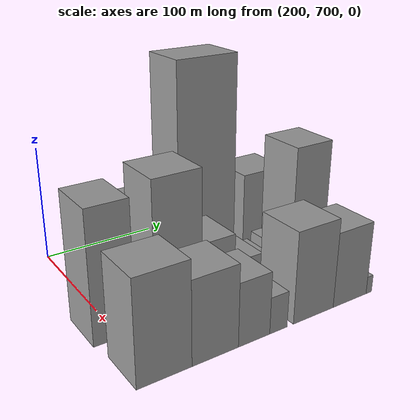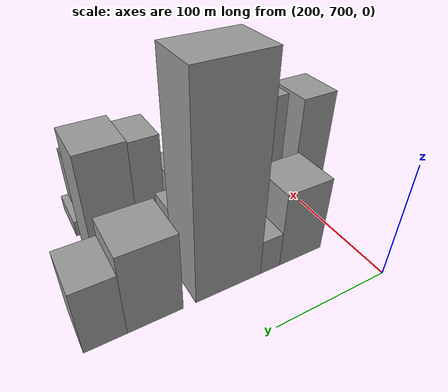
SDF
<sdf version="1.6">
 <world name="default">
  <model name="building_205">
   <static>1</static>
   <pose>265.0000 744.1092 0 0.000000 0.000000 0.000000</pose>
   <link name="link">
    <pose>0 0 34.50 0 0 0</pose>
    <collision name="collision"><geometry><box><size>40.0000 40.7683 69.0000</size></box></geometry></collision>
    <visual name="visual">
     <cast_shadows>0</cast_shadows>
     <geometry><box><size>40.0000 40.7683 69.0000</size></box></geometry>
     <material>
      <script>
       <uri>model://grey_wall/materials/scripts</uri>
       <uri>model://grey_wall/materials/textures</uri>
       <name>vrc/grey_wall</name>
      </script>
     </material>
    </visual>
   </link>
  </model>
  <model name="building_206">
   <static>1</static>
   <pose>265.0000 773.4998 0 0.000000 0.000000 0.000000</pose>
   <link name="link">
    <pose>0 0 16.50 0 0 0</pose>
    <collision name="collision"><geometry><box><size>40.0000 18.0130 33.0000</size></box></geometry></collision>
    <visual name="visual">
     <cast_shadows>0</cast_shadows>
     <geometry><box><size>40.0000 18.0130 33.0000</size></box></geometry>
     <material>
      <script>
       <uri>model://grey_wall/materials/scripts</uri>
       <uri>model://grey_wall/materials/textures</uri>
       <name>vrc/grey_wall</name>
      </script>
     </material>
    </visual>
   </link>
  </model>
  <model name="building_207">
   <static>1</static>
   <pose>265.0000 810.2831 0 0.000000 0.000000 0.000000</pose>
   <link name="link">
    <pose>0 0 88.50 0 0 0</pose>
    <collision name="collision"><geometry><box><size>40.0000 55.5535 177.0000</size></box></geometry></collision>
    <visual name="visual">
     <cast_shadows>0</cast_shadows>
     <geometry><box><size>40.0000 55.5535 177.0000</size></box></geometry>
     <material>
      <script>
       <uri>model://grey_wall/materials/scripts</uri>
       <uri>model://grey_wall/materials/textures</uri>
       <name>vrc/grey_wall</name>
      </script>
     </material>
    </visual>
   </link>
  </model>
  <model name="building_208">
   <static>1</static>
   <pose>265.0000 869.0043 0 0.000000 0.000000 0.000000</pose>
   <link name="link">
    <pose>0 0 36.00 0 0 0</pose>
    <collision name="collision"><geometry><box><size>40.0000 41.8890 72.0000</size></box></geometry></collision>
    <visual name="visual">
     <cast_shadows>0</cast_shadows>
     <geometry><box><size>40.0000 41.8890 72.0000</size></box></geometry>
     <material>
      <script>
       <uri>model://grey_wall/materials/scripts</uri>
       <uri>model://grey_wall/materials/textures</uri>
       <name>vrc/grey_wall</name>
      </script>
     </material>
    </visual>
   </link>
  </model>
  <model name="building_209">
   <static>1</static>
   <pose>265.0000 904.9703 0 0.000000 0.000000 0.000000</pose>
   <link name="link">
    <pose>0 0 28.50 0 0 0</pose>
    <collision name="collision"><geometry><box><size>40.0000 30.0430 57.0000</size></box></geometry></collision>
    <visual name="visual">
     <cast_shadows>0</cast_shadows>
     <geometry><box><size>40.0000 30.0430 57.0000</size></box></geometry>
     <material>
      <script>
       <uri>model://grey_wall/materials/scripts</uri>
       <uri>model://grey_wall/materials/textures</uri>
       <name>vrc/grey_wall</name>
      </script>
     </material>
    </visual>
   </link>
  </model>
  <model name="building_252">
   <static>1</static>
   <pose>320.0000 695.3866 0 0.000000 0.000000 0.000000</pose>
   <link name="link">
    <pose>0 0 52.50 0 0 0</pose>
    <collision name="collision"><geometry><box><size>40.0000 32.7078 105.0000</size></box></geometry></collision>
    <visual name="visual">
     <cast_shadows>0</cast_shadows>
     <geometry><box><size>40.0000 32.7078 105.0000</size></box></geometry>
     <material>
      <script>
       <uri>model://grey_wall/materials/scripts</uri>
       <uri>model://grey_wall/materials/textures</uri>
       <name>vrc/grey_wall</name>
      </script>
     </material>
    </visual>
   </link>
  </model>
  <model name="building_253">
   <static>1</static>
   <pose>320.0000 719.9599 0 0.000000 0.000000 0.000000</pose>
   <link name="link">
    <pose>0 0 15.00 0 0 0</pose>
    <collision name="collision"><geometry><box><size>40.0000 16.4387 30.0000</size></box></geometry></collision>
    <visual name="visual">
     <cast_shadows>0</cast_shadows>
     <geometry><box><size>40.0000 16.4387 30.0000</size></box></geometry>
     <material>
      <script>
       <uri>model://grey_wall/materials/scripts</uri>
       <uri>model://grey_wall/materials/textures</uri>
       <name>vrc/grey_wall</name>
      </script>
     </material>
    </visual>
   </link>
  </model>
  <model name="building_254">
   <static>1</static>
   <pose>320.0000 748.5686 0 0.000000 0.000000 0.000000</pose>
   <link name="link">
    <pose>0 0 57.00 0 0 0</pose>
    <collision name="collision"><geometry><box><size>40.0000 40.7787 114.0000</size></box></geometry></collision>
    <visual name="visual">
     <cast_shadows>0</cast_shadows>
     <geometry><box><size>40.0000 40.7787 114.0000</size></box></geometry>
     <material>
      <script>
       <uri>model://grey_wall/materials/scripts</uri>
       <uri>model://grey_wall/materials/textures</uri>
       <name>vrc/grey_wall</name>
      </script>
     </material>
    </visual>
   </link>
  </model>
  <model name="building_255">
   <static>1</static>
   <pose>320.0000 784.0006 0 0.000000 0.000000 0.000000</pose>
   <link name="link">
    <pose>0 0 27.00 0 0 0</pose>
    <collision name="collision"><geometry><box><size>40.0000 30.0853 54.0000</size></box></geometry></collision>
    <visual name="visual">
     <cast_shadows>0</cast_shadows>
     <geometry><box><size>40.0000 30.0853 54.0000</size></box></geometry>
     <material>
      <script>
       <uri>model://grey_wall/materials/scripts</uri>
       <uri>model://grey_wall/materials/textures</uri>
       <name>vrc/grey_wall</name>
      </script>
     </material>
    </visual>
   </link>
  </model>
  <model name="building_256">
   <static>1</static>
   <pose>320.0000 817.0098 0 0.000000 0.000000 0.000000</pose>
   <link name="link">
    <pose>0 0 15.00 0 0 0</pose>
    <collision name="collision"><geometry><box><size>40.0000 17.9331 30.0000</size></box></geometry></collision>
    <visual name="visual">
     <cast_shadows>0</cast_shadows>
     <geometry><box><size>40.0000 17.9331 30.0000</size></box></geometry>
     <material>
      <script>
       <uri>model://grey_wall/materials/scripts</uri>
       <uri>model://grey_wall/materials/textures</uri>
       <name>vrc/grey_wall</name>
      </script>
     </material>
    </visual>
   </link>
  </model>
  <model name="building_257">
   <static>1</static>
   <pose>320.0000 836.5805 0 0.000000 0.000000 0.000000</pose>
   <link name="link">
    <pose>0 0 10.50 0 0 0</pose>
    <collision name="collision"><geometry><box><size>40.0000 9.2084 21.0000</size></box></geometry></collision>
    <visual name="visual">
     <cast_shadows>0</cast_shadows>
     <geometry><box><size>40.0000 9.2084 21.0000</size></box></geometry>
     <material>
      <script>
       <uri>model://grey_wall/materials/scripts</uri>
       <uri>model://grey_wall/materials/textures</uri>
       <name>vrc/grey_wall</name>
      </script>
     </material>
    </visual>
   </link>
  </model>
  <model name="building_258">
   <static>1</static>
   <pose>320.0000 850.7938 0 0.000000 0.000000 0.000000</pose>
   <link name="link">
    <pose>0 0 13.50 0 0 0</pose>
    <collision name="collision"><geometry><box><size>40.0000 11.2181 27.0000</size></box></geometry></collision>
    <visual name="visual">
     <cast_shadows>0</cast_shadows>
     <geometry><box><size>40.0000 11.2181 27.0000</size></box></geometry>
     <material>
      <script>
       <uri>model://grey_wall/materials/scripts</uri>
       <uri>model://grey_wall/materials/textures</uri>
       <name>vrc/grey_wall</name>
      </script>
     </material>
    </visual>
   </link>
  </model>
  <model name="building_259">
   <static>1</static>
   <pose>320.0000 874.3177 0 0.000000 0.000000 0.000000</pose>
   <link name="link">
    <pose>0 0 55.50 0 0 0</pose>
    <collision name="collision"><geometry><box><size>40.0000 35.8296 111.0000</size></box></geometry></collision>
    <visual name="visual">
     <cast_shadows>0</cast_shadows>
     <geometry><box><size>40.0000 35.8296 111.0000</size></box></geometry>
     <material>
      <script>
       <uri>model://grey_wall/materials/scripts</uri>
       <uri>model://grey_wall/materials/textures</uri>
       <name>vrc/grey_wall</name>
      </script>
     </material>
    </visual>
   </link>
  </model>
  <model name="building_310">
   <static>1</static>
   <pose>375.0000 703.6495 0 0.000000 0.000000 0.000000</pose>
   <link name="link">
    <pose>0 0 40.50 0 0 0</pose>
    <collision name="collision"><geometry><box><size>40.0000 41.6178 81.0000</size></box></geometry></collision>
    <visual name="visual">
     <cast_shadows>0</cast_shadows>
     <geometry><box><size>40.0000 41.6178 81.0000</size></box></geometry>
     <material>
      <script>
       <uri>model://grey_wall/materials/scripts</uri>
       <uri>model://grey_wall/materials/textures</uri>
       <name>vrc/grey_wall</name>
      </script>
     </material>
    </visual>
   </link>
  </model>
  <model name="building_311">
   <static>1</static>
   <pose>375.0000 743.4614 0 0.000000 0.000000 0.000000</pose>
   <link name="link">
    <pose>0 0 33.00 0 0 0</pose>
    <collision name="collision"><geometry><box><size>40.0000 38.0060 66.0000</size></box></geometry></collision>
    <visual name="visual">
     <cast_shadows>0</cast_shadows>
     <geometry><box><size>40.0000 38.0060 66.0000</size></box></geometry>
     <material>
      <script>
       <uri>model://grey_wall/materials/scripts</uri>
       <uri>model://grey_wall/materials/textures</uri>
       <name>vrc/grey_wall</name>
      </script>
     </material>
    </visual>
   </link>
  </model>
  <model name="building_312">
   <static>1</static>
   <pose>375.0000 776.2778 0 0.000000 0.000000 0.000000</pose>
   <link name="link">
    <pose>0 0 25.50 0 0 0</pose>
    <collision name="collision"><geometry><box><size>40.0000 27.6269 51.0000</size></box></geometry></collision>
    <visual name="visual">
     <cast_shadows>0</cast_shadows>
     <geometry><box><size>40.0000 27.6269 51.0000</size></box></geometry>
     <material>
      <script>
       <uri>model://grey_wall/materials/scripts</uri>
       <uri>model://grey_wall/materials/textures</uri>
       <name>vrc/grey_wall</name>
      </script>
     </material>
    </visual>
   </link>
  </model>
  <model name="building_313">
   <static>1</static>
   <pose>375.0000 798.1354 0 0.000000 0.000000 0.000000</pose>
   <link name="link">
    <pose>0 0 15.00 0 0 0</pose>
    <collision name="collision"><geometry><box><size>40.0000 16.0882 30.0000</size></box></geometry></collision>
    <visual name="visual">
     <cast_shadows>0</cast_shadows>
     <geometry><box><size>40.0000 16.0882 30.0000</size></box></geometry>
     <material>
      <script>
       <uri>model://grey_wall/materials/scripts</uri>
       <uri>model://grey_wall/materials/textures</uri>
       <name>vrc/grey_wall</name>
      </script>
     </material>
    </visual>
   </link>
  </model>
  <model name="building_314">
   <static>1</static>
   <pose>375.0000 831.9489 0 0.000000 0.000000 0.000000</pose>
   <link name="link">
    <pose>0 0 37.50 0 0 0</pose>
    <collision name="collision"><geometry><box><size>40.0000 39.5387 75.0000</size></box></geometry></collision>
    <visual name="visual">
     <cast_shadows>0</cast_shadows>
     <geometry><box><size>40.0000 39.5387 75.0000</size></box></geometry>
     <material>
      <script>
       <uri>model://grey_wall/materials/scripts</uri>
       <uri>model://grey_wall/materials/textures</uri>
       <name>vrc/grey_wall</name>
      </script>
     </material>
    </visual>
   </link>
  </model>
  <model name="building_315">
   <static>1</static>
   <pose>375.0000 869.4064 0 0.000000 0.000000 0.000000</pose>
   <link name="link">
    <pose>0 0 31.50 0 0 0</pose>
    <collision name="collision"><geometry><box><size>40.0000 35.3763 63.0000</size></box></geometry></collision>
    <visual name="visual">
     <cast_shadows>0</cast_shadows>
     <geometry><box><size>40.0000 35.3763 63.0000</size></box></geometry>
     <material>
      <script>
       <uri>model://grey_wall/materials/scripts</uri>
       <uri>model://grey_wall/materials/textures</uri>
       <name>vrc/grey_wall</name>
      </script>
     </material>
    </visual>
   </link>
  </model>
  <model name="building_316">
   <static>1</static>
   <pose>375.0000 890.1421 0 0.000000 0.000000 0.000000</pose>
   <link name="link">
    <pose>0 0 7.50 0 0 0</pose>
    <collision name="collision"><geometry><box><size>40.0000 6.0950 15.0000</size></box></geometry></collision>
    <visual name="visual">
     <cast_shadows>0</cast_shadows>
     <geometry><box><size>40.0000 6.0950 15.0000</size></box></geometry>
     <material>
      <script>
       <uri>model://grey_wall/materials/scripts</uri>
       <uri>model://grey_wall/materials/textures</uri>
       <name>vrc/grey_wall</name>
      </script>
     </material>
    </visual>
   </link>
  </model>
 </world>
</sdf>
